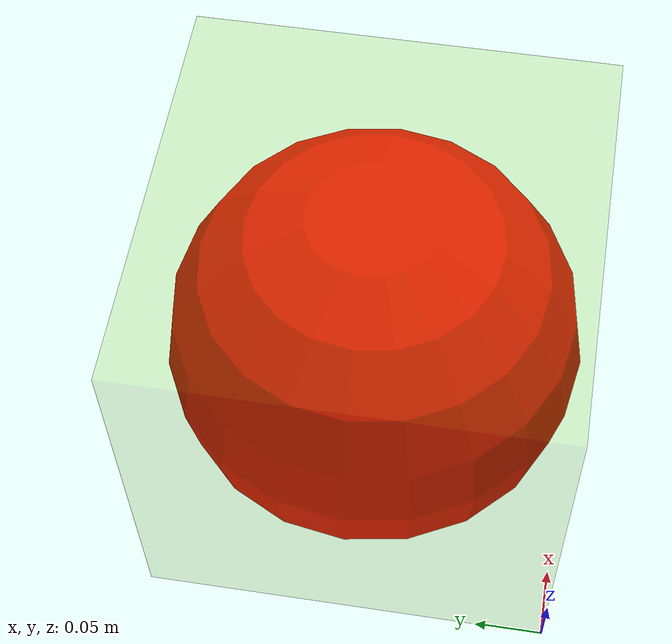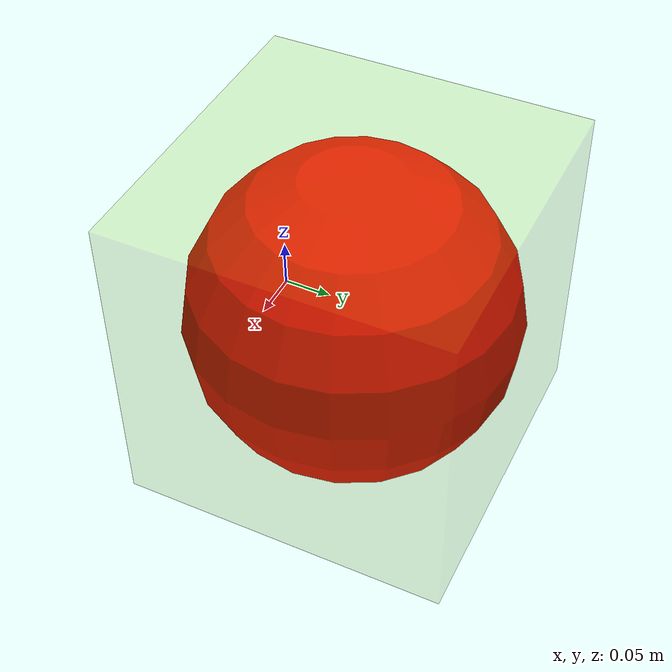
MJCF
<?xml version="1.0" encoding="utf-8"?>
<mujoco>
    <include file="include.xml"/>
    <worldbody>
        <body name="particle" pos="0.15 0.15 0.15">
            <joint axis="1 0 0" damping="0.1" name="slide0" pos="0 0 0" type="slide"></joint>
            <joint axis="0 1 0" damping="0.1" name="slide1" pos="0 0 0" type="slide"></joint>
            <joint axis="0 0 1" damping="10000" name="slide2" pos="0 0 0" type="slide"></joint>
            <geom mass="1" pos="0 0 0" rgba="1 0 0 1" size="0.15" type="sphere"></geom>
            <camera euler="0 0 0" fovy="40" name="rgb" pos="0 0 2.5"></camera>
        </body>
    </worldbody>
    <actuator>
        <motor gear="100" joint="slide0"></motor>
        <motor gear="100" joint="slide1"></motor>
    </actuator>
</mujoco>

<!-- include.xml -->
<mujocoinclude>
    <worldbody>
        <body name="blabla" pos="0.15 0.15 0.15">
            <geom conaffinity="1" contype="1" mass="0" pos="0 0 0" rgba="0.417 0.7203 0.0001 0.1" size="0.15 0.15 0.15" type="box"></geom>
        </body>
    </worldbody>
</mujocoinclude>
